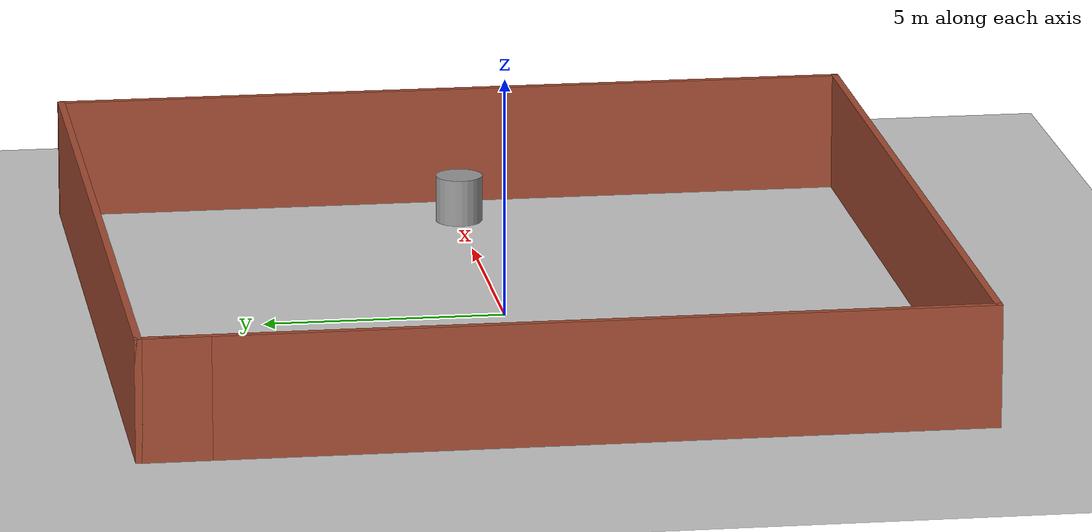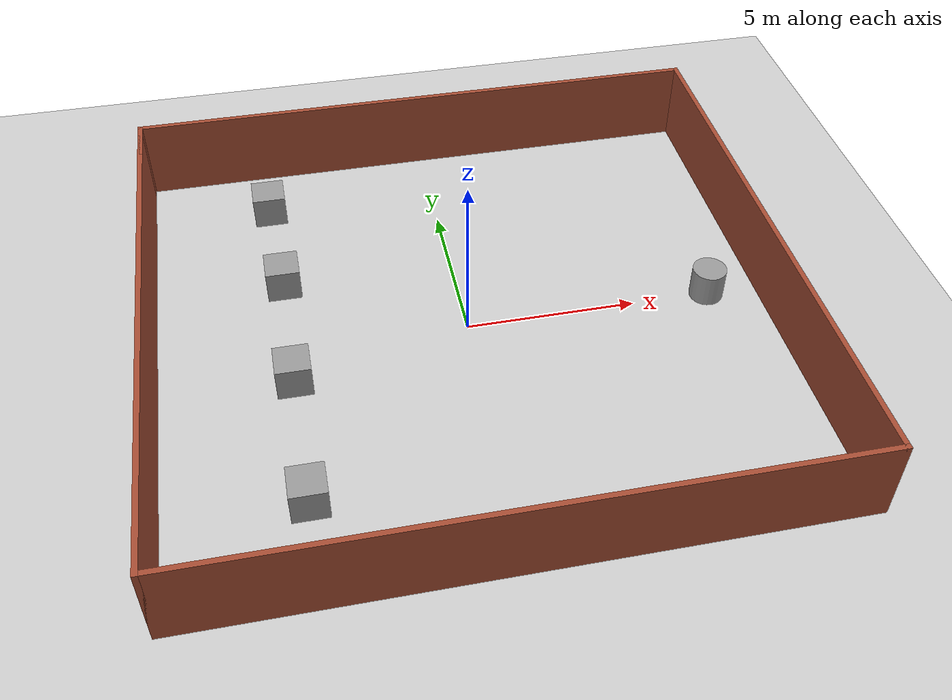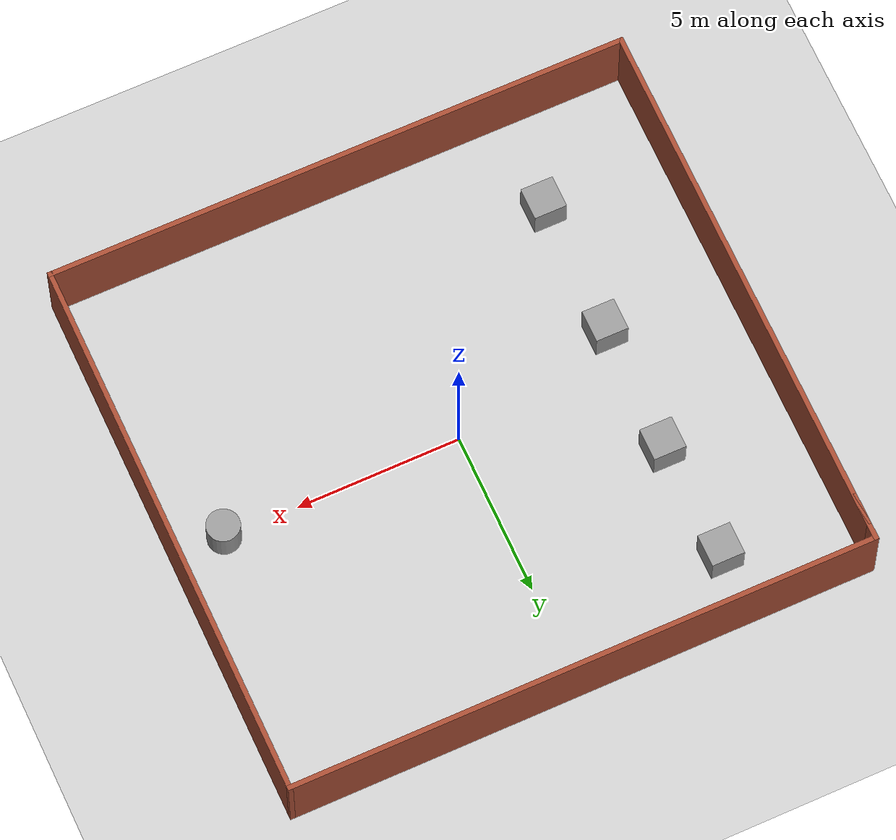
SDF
<sdf version="1.7">
 <world name="default">
  <light name="sun" type="directional">
   <pose>0 0 10 0 -0 0</pose>
   <diffuse>0.8 0.8 0.8 1</diffuse>
   <specular>0.2 0.2 0.2 1</specular>
   <attenuation>
    <range>1000</range>
    <constant>0.9</constant>
    <linear>0.01</linear>
    <quadratic>0.001</quadratic>
   </attenuation>
   <direction>-0.5 0.1 -0.9</direction>
   <spot><inner_angle>0</inner_angle><outer_angle>0</outer_angle><falloff>0</falloff></spot>
  </light>
  <model name="ground_plane">
   <static>1</static>
   <link name="link">
    <collision name="collision">
     <geometry><plane><normal>0 0 1</normal><size>100 100</size></plane></geometry>
     <surface>
      <contact><collide_bitmask>65535</collide_bitmask></contact>
      <friction><ode><mu>100</mu><mu2>50</mu2></ode></friction>
     </surface>
    </collision>
    <visual name="visual">
     <cast_shadows>0</cast_shadows>
     <geometry><plane><normal>0 0 1</normal><size>100 100</size></plane></geometry>
     <material>
      <script><uri>file://media/materials/scripts/gazebo.material</uri><name>Gazebo/Grey</name></script>
     </material>
    </visual>
   </link>
  </model>
  <gravity>0 0 -9.8</gravity>
  <magnetic_field>6e-06 2.3e-05 -4.2e-05</magnetic_field>
  <atmosphere type="adiabatic"/>
  <physics type="ode">
   <max_step_size>0.001</max_step_size>
   <real_time_factor>1</real_time_factor>
   <real_time_update_rate>1000</real_time_update_rate>
  </physics>
  <scene><ambient>0.4 0.4 0.4 1</ambient><background>0.7 0.7 0.7 1</background><shadows>1</shadows></scene>
  <spherical_coordinates>
   <surface_model>EARTH_WGS84</surface_model>
   <latitude_deg>0</latitude_deg>
   <longitude_deg>0</longitude_deg>
   <elevation>0</elevation>
   <heading_deg>0</heading_deg>
  </spherical_coordinates>
  <model name="map1.1">
   <pose>-0.04475 -0.0499 0 0 -0 0</pose>
   <link name="Wall_10">
    <collision name="Wall_10_Collision">
     <geometry><box><size>18 0.15 2.5</size></box></geometry>
     <pose>0 0 1.25 0 -0 0</pose>
    </collision>
    <visual name="Wall_10_Visual">
     <pose>0 0 1.25 0 -0 0</pose>
     <geometry><box><size>18 0.15 2.5</size></box></geometry>
     <material>
      <script><uri>file://media/materials/scripts/gazebo.material</uri><name>Gazebo/Bricks</name></script>
      <ambient>1 1 1 1</ambient>
     </material>
     <meta><layer>0</layer></meta>
    </visual>
    <pose>-0 8.425 0 0 -0 3.14159</pose>
   </link>
   <link name="Wall_11">
    <collision name="Wall_11_Collision">
     <geometry><box><size>1.5 0.15 2.5</size></box></geometry>
     <pose>0 0 1.25 0 -0 0</pose>
    </collision>
    <visual name="Wall_11_Visual">
     <pose>0 0 1.25 0 -0 0</pose>
     <geometry><box><size>1.5 0.15 2.5</size></box></geometry>
     <material>
      <script><uri>file://media/materials/scripts/gazebo.material</uri><name>Gazebo/Bricks</name></script>
      <ambient>1 1 1 1</ambient>
     </material>
     <meta><layer>0</layer></meta>
    </visual>
    <pose>-8.925 7.75 0 0 -0 -1.5708</pose>
   </link>
   <link name="Wall_7">
    <collision name="Wall_7_Collision">
     <geometry><box><size>16.5 0.15 2.5</size></box></geometry>
     <pose>0 0 1.25 0 -0 0</pose>
    </collision>
    <visual name="Wall_7_Visual">
     <pose>0 0 1.25 0 -0 0</pose>
     <geometry><box><size>16.5 0.15 2.5</size></box></geometry>
     <material>
      <script><uri>file://media/materials/scripts/gazebo.material</uri><name>Gazebo/Bricks</name></script>
      <ambient>1 1 1 1</ambient>
     </material>
     <meta><layer>0</layer></meta>
    </visual>
    <pose>-8.925 -0.25 0 0 -0 -1.5708</pose>
   </link>
   <link name="Wall_8">
    <collision name="Wall_8_Collision">
     <geometry><box><size>18 0.15 2.5</size></box></geometry>
     <pose>0 0 1.25 0 -0 0</pose>
    </collision>
    <visual name="Wall_8_Visual">
     <pose>0 0 1.25 0 -0 0</pose>
     <geometry><box><size>18 0.15 2.5</size></box></geometry>
     <material>
      <script><uri>file://media/materials/scripts/gazebo.material</uri><name>Gazebo/Bricks</name></script>
      <ambient>1 1 1 1</ambient>
     </material>
     <meta><layer>0</layer></meta>
    </visual>
    <pose>-0 -8.425 0 0 -0 0</pose>
   </link>
   <link name="Wall_9">
    <collision name="Wall_9_Collision">
     <geometry><box><size>17 0.15 2.5</size></box></geometry>
     <pose>0 0 1.25 0 -0 0</pose>
    </collision>
    <visual name="Wall_9_Visual">
     <pose>0 0 1.25 0 -0 0</pose>
     <geometry><box><size>17 0.15 2.5</size></box></geometry>
     <material>
      <script><uri>file://media/materials/scripts/gazebo.material</uri><name>Gazebo/Bricks</name></script>
      <ambient>1 1 1 1</ambient>
     </material>
     <meta><layer>0</layer></meta>
    </visual>
    <pose>8.925 0 0 0 -0 1.5708</pose>
   </link>
   <static>1</static>
  </model>
  <model name="unit_cylinder">
   <pose>7.27578 -0.012205 0.499992 -3e-06 -4e-06 -0</pose>
   <link name="link">
    <inertial>
     <mass>1</mass>
     <inertia><ixx>0.145833</ixx><ixy>0</ixy><ixz>0</ixz><iyy>0.145833</iyy><iyz>0</iyz><izz>0.125</izz></inertia>
    </inertial>
    <collision name="collision">
     <geometry><cylinder><radius>0.5</radius><length>1</length></cylinder></geometry>
    </collision>
    <visual name="visual">
     <geometry><cylinder><radius>0.5</radius><length>1</length></cylinder></geometry>
     <material>
      <script><name>Gazebo/Grey</name><uri>file://media/materials/scripts/gazebo.material</uri></script>
     </material>
    </visual>
   </link>
  </model>
  <model name="unit_box">
   <pose>-5.12136 2.69821 0.499995 -1e-05 -0 -0</pose>
   <link name="link">
    <inertial>
     <mass>1</mass>
     <inertia>
      <ixx>0.166667</ixx>
      <ixy>0</ixy>
      <ixz>0</ixz>
      <iyy>0.166667</iyy>
      <iyz>0</iyz>
      <izz>0.166667</izz>
     </inertia>
    </inertial>
    <collision name="collision"><geometry><box><size>1 1 1</size></box></geometry></collision>
    <visual name="visual">
     <geometry><box><size>1 1 1</size></box></geometry>
     <material>
      <script><name>Gazebo/Grey</name><uri>file://media/materials/scripts/gazebo.material</uri></script>
     </material>
    </visual>
   </link>
  </model>
  <model name="unit_box_0">
   <pose>-5.16183 -1.27737 0.499995 0 1e-05 0</pose>
   <link name="link">
    <inertial>
     <mass>1</mass>
     <inertia>
      <ixx>0.166667</ixx>
      <ixy>0</ixy>
      <ixz>0</ixz>
      <iyy>0.166667</iyy>
      <iyz>0</iyz>
      <izz>0.166667</izz>
     </inertia>
    </inertial>
    <collision name="collision"><geometry><box><size>1 1 1</size></box></geometry></collision>
    <visual name="visual">
     <geometry><box><size>1 1 1</size></box></geometry>
     <material>
      <script><name>Gazebo/Grey</name><uri>file://media/materials/scripts/gazebo.material</uri></script>
     </material>
    </visual>
   </link>
  </model>
  <model name="unit_box_1">
   <pose>-5.15788 -5.47917 0.499995 -1e-05 -0 0</pose>
   <link name="link">
    <inertial>
     <mass>1</mass>
     <inertia>
      <ixx>0.166667</ixx>
      <ixy>0</ixy>
      <ixz>0</ixz>
      <iyy>0.166667</iyy>
      <iyz>0</iyz>
      <izz>0.166667</izz>
     </inertia>
    </inertial>
    <collision name="collision"><geometry><box><size>1 1 1</size></box></geometry></collision>
    <visual name="visual">
     <geometry><box><size>1 1 1</size></box></geometry>
     <material>
      <script><name>Gazebo/Grey</name><uri>file://media/materials/scripts/gazebo.material</uri></script>
     </material>
    </visual>
   </link>
  </model>
  <model name="unit_box_2">
   <pose>-5.25598 6.28508 0.5 0 -0 0</pose>
   <link name="link">
    <inertial>
     <mass>1</mass>
     <inertia>
      <ixx>0.166667</ixx>
      <ixy>0</ixy>
      <ixz>0</ixz>
      <iyy>0.166667</iyy>
      <iyz>0</iyz>
      <izz>0.166667</izz>
     </inertia>
    </inertial>
    <collision name="collision"><geometry><box><size>1 1 1</size></box></geometry></collision>
    <visual name="visual">
     <geometry><box><size>1 1 1</size></box></geometry>
     <material>
      <script><name>Gazebo/Grey</name><uri>file://media/materials/scripts/gazebo.material</uri></script>
     </material>
    </visual>
   </link>
  </model>
 </world>
</sdf>
